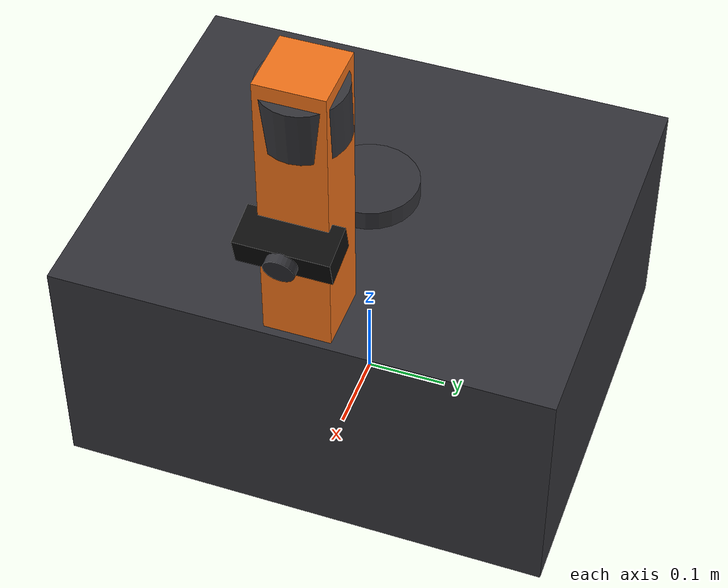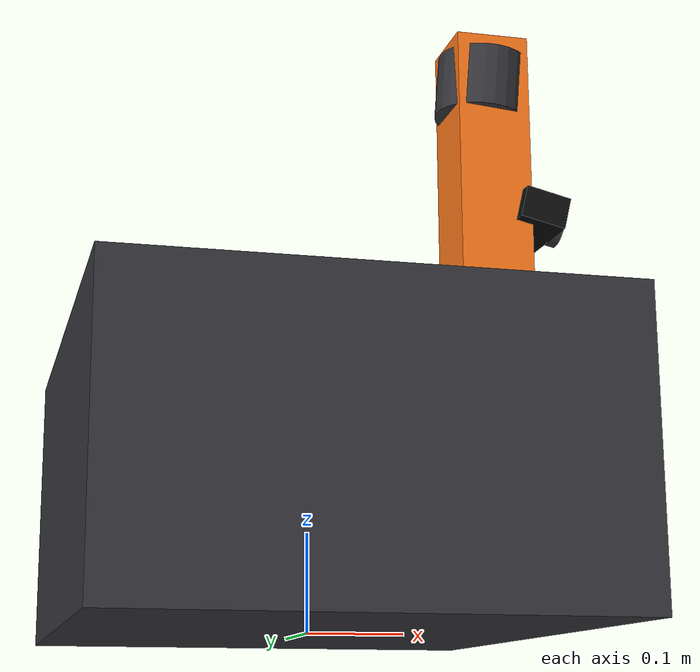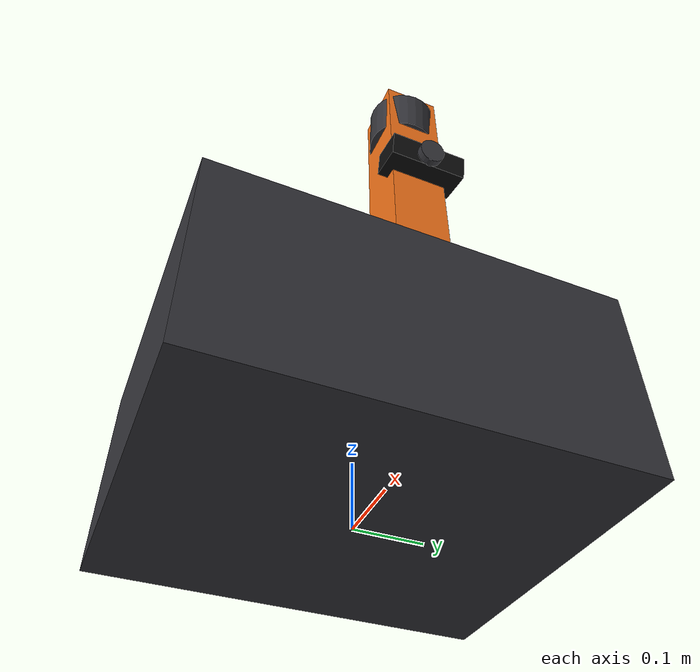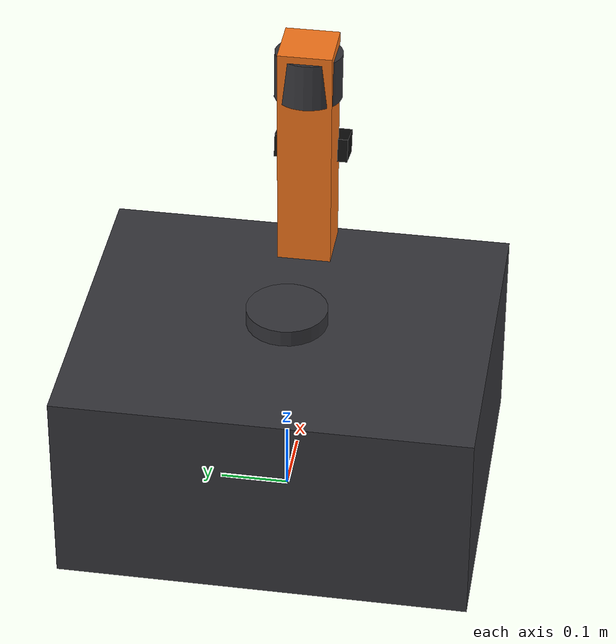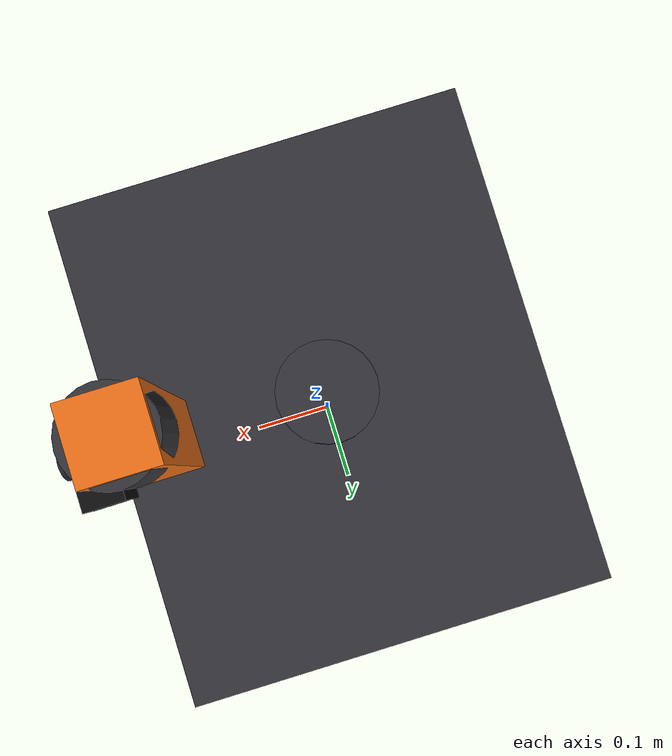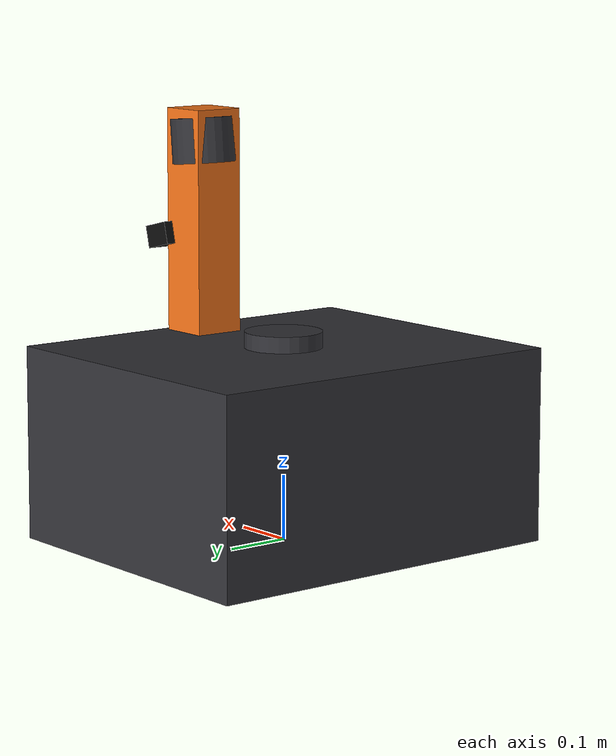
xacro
<?xml version="1.0"?>
<robot name="negative_obstacle_robot" xmlns:xacro="http://www.ros.org/wiki/xacro">

  <material name="dark_grey"><color rgba="0.20 0.20 0.22 1"/></material>
  <material name="orange"><color rgba="0.95 0.45 0.10 1"/></material>
  <material name="black"><color rgba="0.05 0.05 0.05 1"/></material>

  <!-- Geometry (SI units). -->
  <xacro:property name="wheel_radius" value="0.08"/>
  <xacro:property name="wheel_width" value="0.04"/>
  <xacro:property name="track" value="0.44"/>
  <xacro:property name="caster_offset" value="0.20"/>
  <xacro:property name="chassis_length" value="0.50"/>
  <xacro:property name="chassis_width" value="0.60"/>
  <xacro:property name="chassis_height" value="0.30"/>
  <xacro:property name="chassis_z" value="0.15"/>

  <link name="base_footprint"/>

  <joint name="base_footprint_joint" type="fixed">
    <parent link="base_footprint"/>
    <child link="base_link"/>
    <origin xyz="0 0 ${chassis_z}" rpy="0 0 0"/>
  </joint>

  <link name="base_link">
    <visual>
      <geometry><box size="${chassis_length} ${chassis_width} ${chassis_height}"/></geometry>
      <material name="dark_grey"/>
    </visual>
    <collision>
      <geometry><box size="${chassis_length} ${chassis_width} ${chassis_height}"/></geometry>
    </collision>
    <inertial>
      <origin xyz="0 0 0" rpy="0 0 0"/>
      <mass value="12.0"/>
      <!-- Box 0.50 x 0.60 x 0.30, m = 12 kg. -->
      <inertia ixx="0.45" ixy="0" ixz="0" iyy="0.34" iyz="0" izz="0.61"/>
    </inertial>
  </link>

  <!-- Differential drive wheels. -->
  <xacro:macro name="drive_wheel" params="prefix reflect_y">
    <joint name="${prefix}_wheel_joint" type="continuous">
      <parent link="base_link"/>
      <child link="${prefix}_wheel_link"/>
      <origin xyz="0 ${reflect_y * track / 2} ${wheel_radius - chassis_z}" rpy="0 0 0"/>
      <axis xyz="0 1 0"/>
      <limit effort="20" velocity="5"/>
    </joint>

    <link name="${prefix}_wheel_link">
      <visual>
        <origin xyz="0 0 0" rpy="1.5708 0 0"/>
        <geometry><cylinder radius="${wheel_radius}" length="${wheel_width}"/></geometry>
        <material name="black"/>
      </visual>
      <collision>
        <origin xyz="0 0 0" rpy="1.5708 0 0"/>
        <geometry><cylinder radius="${wheel_radius}" length="${wheel_width}"/></geometry>
      </collision>
      <inertial>
        <origin xyz="0 0 0" rpy="1.5708 0 0"/>
        <mass value="0.4"/>
        <inertia ixx="0.00069" ixy="0" ixz="0" iyy="0.00128" iyz="0" izz="0.00069"/>
      </inertial>
    </link>
  </xacro:macro>

  <xacro:drive_wheel prefix="left" reflect_y="-1"/>
  <xacro:drive_wheel prefix="right" reflect_y="1"/>

  <!-- Passive casters for stability. -->
  <xacro:macro name="caster" params="prefix reflect_x">
    <joint name="${prefix}_caster_joint" type="fixed">
      <parent link="base_link"/>
      <child link="${prefix}_caster_link"/>
      <origin xyz="${reflect_x * caster_offset} 0 ${0.04 - chassis_z}" rpy="0 0 0"/>
    </joint>

    <link name="${prefix}_caster_link">
      <visual>
        <geometry><sphere radius="0.04"/></geometry>
        <material name="black"/>
      </visual>
      <collision>
        <geometry><sphere radius="0.04"/></geometry>
      </collision>
      <inertial>
        <mass value="0.1"/>
        <inertia ixx="0.000064" ixy="0" ixz="0" iyy="0.000064" iyz="0" izz="0.000064"/>
      </inertial>
    </link>
  </xacro:macro>

  <xacro:caster prefix="front" reflect_x="1"/>
  <xacro:caster prefix="back" reflect_x="-1"/>

  <!-- Vertical mast carrying the sensors. -->
  <link name="sensor_mast">
    <visual>
      <origin xyz="0 0 0.175" rpy="0 0 0"/>
      <geometry><box size="0.08 0.08 0.35"/></geometry>
      <material name="orange"/>
    </visual>
    <collision>
      <origin xyz="0 0 0.175" rpy="0 0 0"/>
      <geometry><box size="0.08 0.08 0.35"/></geometry>
    </collision>
    <inertial>
      <origin xyz="0 0 0.175" rpy="0 0 0"/>
      <mass value="0.5"/>
      <inertia ixx="0.0052" ixy="0" ixz="0" iyy="0.0052" iyz="0" izz="0.00053"/>
    </inertial>
  </link>

  <joint name="sensor_mast_joint" type="fixed">
    <parent link="base_link"/>
    <child link="sensor_mast"/>
    <origin xyz="0.20 0 0.15" rpy="0 0 0"/>
  </joint>

  <link name="imu_link">
    <inertial>
      <mass value="0.02"/>
      <inertia ixx="1e-5" ixy="0" ixz="0" iyy="1e-5" iyz="0" izz="1e-5"/>
    </inertial>
  </link>

  <joint name="imu_joint" type="fixed">
    <parent link="base_link"/>
    <child link="imu_link"/>
    <origin xyz="0 0 0" rpy="0 0 0"/>
  </joint>

  <xacro:include filename="$(find negative_obstacle_description)/urdf/sensors/depth_camera.xacro"/>
  <xacro:include filename="$(find negative_obstacle_description)/urdf/sensors/lidar3d.xacro"/>
  <xacro:include filename="$(find negative_obstacle_description)/urdf/sensors/lidar2d.xacro"/>

  <xacro:depth_camera name="depth_camera" parent_link="base_link"
    xyz="0.25 0 0.30" rpy="0 0.23562 0"/>
  <xacro:lidar3d name="lidar3d" parent_link="base_link"
    xyz="0.20 0 0.45" rpy="0 0.08727 0"/>
  <xacro:lidar2d name="lidar2d" parent_link="base_link"
    xyz="0 0 0.15" rpy="0 0 0"/>

  <!--
    Differential-drive plugin. Publishes /cmd_vel (subscription) and odometry
    inside Gazebo; the bridge maps them to ROS in the simulation package.
  -->
  <gazebo>
    <plugin filename="gz-sim-diff-drive-system" name="gz::sim::systems::DiffDrive">
      <left_joint>left_wheel_joint</left_joint>
      <right_joint>right_wheel_joint</right_joint>
      <wheel_separation>${track}</wheel_separation>
      <wheel_radius>${wheel_radius}</wheel_radius>
      <max_linear_acceleration>1.0</max_linear_acceleration>
      <max_angular_acceleration>2.0</max_angular_acceleration>
      <odom_publish_frequency>50</odom_publish_frequency>
    </plugin>
  </gazebo>

</robot>

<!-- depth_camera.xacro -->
<robot xmlns:xacro="http://www.ros.org/wiki/xacro">

  <xacro:macro name="depth_camera" params="name parent_link xyz rpy">
    <link name="${name}_link">
      <visual>
        <geometry><box size="0.05 0.11 0.035"/></geometry>
        <material name="black"/>
      </visual>
      <visual>
        <origin xyz="0.03 0 0" rpy="0 1.5708 0"/>
        <geometry><cylinder radius="0.018" length="0.012"/></geometry>
        <material name="dark_grey"/>
      </visual>
      <collision>
        <geometry><box size="0.05 0.11 0.035"/></geometry>
      </collision>
      <inertial>
        <origin xyz="0 0 0" rpy="0 0 0"/>
        <mass value="0.07"/>
        <inertia ixx="1e-4" ixy="0" ixz="0" iyy="1e-4" iyz="0" izz="1e-4"/>
      </inertial>
    </link>

    <joint name="${name}_joint" type="fixed">
      <parent link="${parent_link}"/>
      <child link="${name}_link"/>
      <origin xyz="${xyz}" rpy="${rpy}"/>
    </joint>

    <link name="${name}_optical_frame"/>

    <joint name="${name}_optical_joint" type="fixed">
      <parent link="${name}_link"/>
      <child link="${name}_optical_frame"/>
      <origin xyz="0 0 0" rpy="-1.5708 0 -1.5708"/>
    </joint>

    <gazebo reference="${name}_link">
      <sensor type="rgbd_camera" name="${name}">
        <topic>${name}</topic>
        <update_rate>15</update_rate>
        <camera>
          <!-- 87 deg horizontal FoV; vertical is derived from the 4:3 aspect. -->
          <horizontal_fov>1.51844</horizontal_fov>
          <image>
            <width>640</width>
            <height>480</height>
          </image>
          <clip>
            <near>0.05</near>
            <far>8.0</far>
          </clip>
        </camera>
        <always_on>1</always_on>
        <visualize>0</visualize>
      </sensor>
    </gazebo>
  </xacro:macro>

</robot>

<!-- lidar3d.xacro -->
<robot xmlns:xacro="http://www.ros.org/wiki/xacro">

  <xacro:macro name="lidar3d" params="name parent_link xyz rpy">
    <link name="${name}_link">
      <visual>
        <geometry><cylinder radius="0.05" length="0.07"/></geometry>
        <material name="dark_grey"/>
      </visual>
      <collision>
        <geometry><cylinder radius="0.05" length="0.07"/></geometry>
      </collision>
      <inertial>
        <origin xyz="0 0 0" rpy="0 0 0"/>
        <mass value="0.3"/>
        <inertia ixx="2e-4" ixy="0" ixz="0" iyy="2e-4" iyz="0" izz="4e-4"/>
      </inertial>
    </link>

    <joint name="${name}_joint" type="fixed">
      <parent link="${parent_link}"/>
      <child link="${name}_link"/>
      <origin xyz="${xyz}" rpy="${rpy}"/>
    </joint>

    <gazebo reference="${name}_link">
      <sensor type="gpu_lidar" name="${name}">
        <topic>${name}</topic>
        <update_rate>10</update_rate>
        <lidar>
          <scan>
            <horizontal>
              <samples>720</samples>
              <resolution>1</resolution>
              <min_angle>-3.14159</min_angle>
              <max_angle>3.14159</max_angle>
            </horizontal>
            <vertical>
              <samples>32</samples>
              <resolution>1</resolution>
              <min_angle>-0.43633</min_angle>
              <max_angle>0.26180</max_angle>
            </vertical>
          </scan>
          <range>
            <min>0.5</min>
            <max>30</max>
            <resolution>0.01</resolution>
          </range>
          <noise>
            <type>gaussian</type>
            <mean>0</mean>
            <stddev>0.02</stddev>
          </noise>
        </lidar>
        <always_on>1</always_on>
      </sensor>
    </gazebo>
  </xacro:macro>

</robot>

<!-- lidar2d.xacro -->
<robot xmlns:xacro="http://www.ros.org/wiki/xacro">

  <xacro:macro name="lidar2d" params="name parent_link xyz rpy">
    <link name="${name}_link">
      <visual>
        <geometry><cylinder radius="0.06" length="0.05"/></geometry>
        <material name="dark_grey"/>
      </visual>
      <collision>
        <geometry><cylinder radius="0.06" length="0.05"/></geometry>
      </collision>
      <inertial>
        <origin xyz="0 0 0" rpy="0 0 0"/>
        <mass value="0.2"/>
        <inertia ixx="2e-4" ixy="0" ixz="0" iyy="2e-4" iyz="0" izz="3e-4"/>
      </inertial>
    </link>

    <joint name="${name}_joint" type="fixed">
      <parent link="${parent_link}"/>
      <child link="${name}_link"/>
      <origin xyz="${xyz}" rpy="${rpy}"/>
    </joint>

    <gazebo reference="${name}_link">
      <sensor type="gpu_lidar" name="${name}">
        <topic>${name}</topic>
        <update_rate>10</update_rate>
        <lidar>
          <scan>
            <horizontal>
              <samples>720</samples>
              <resolution>1</resolution>
              <min_angle>-3.14159</min_angle>
              <max_angle>3.14159</max_angle>
            </horizontal>
            <vertical>
              <samples>1</samples>
              <resolution>1</resolution>
              <min_angle>0</min_angle>
              <max_angle>0</max_angle>
            </vertical>
          </scan>
          <range>
            <min>0.05</min>
            <max>12</max>
            <resolution>0.01</resolution>
          </range>
        </lidar>
        <always_on>1</always_on>
      </sensor>
    </gazebo>
  </xacro:macro>

</robot>
